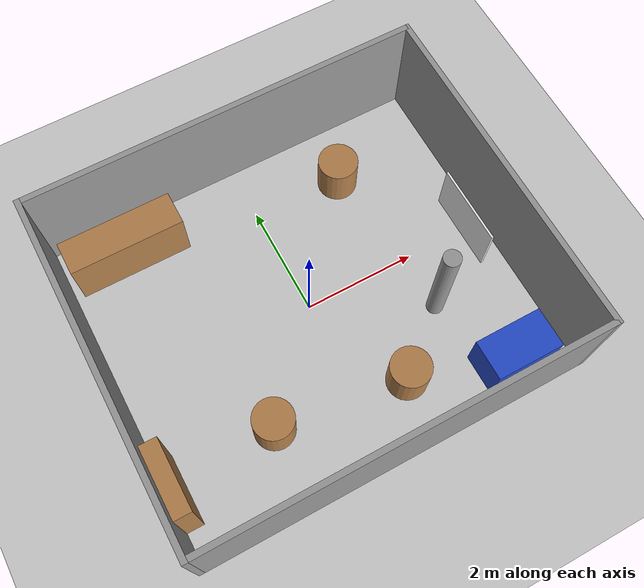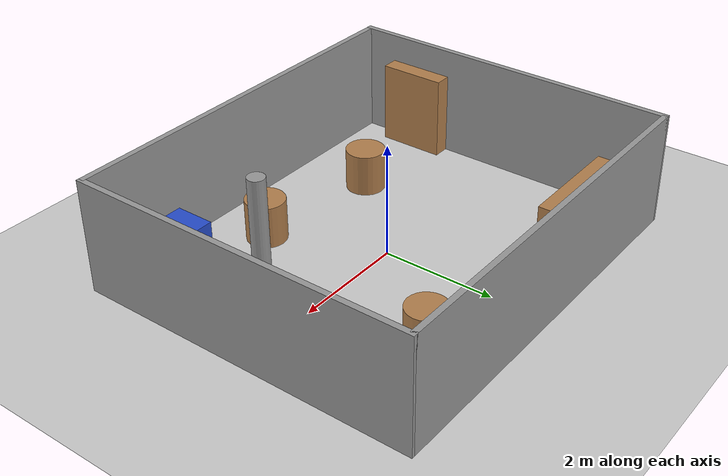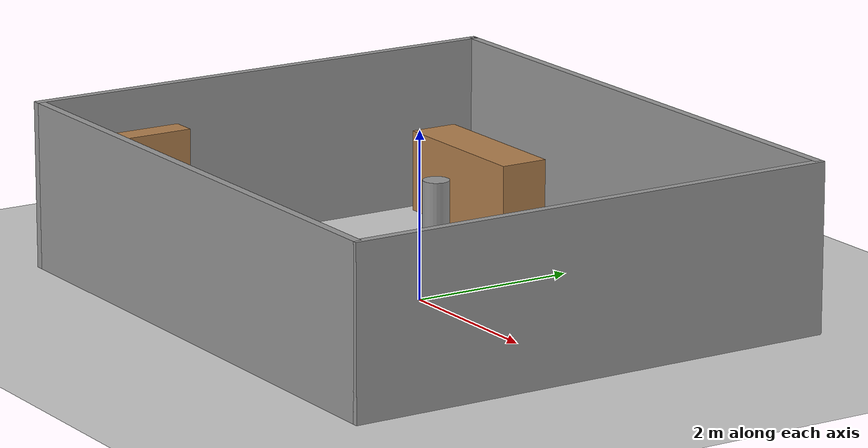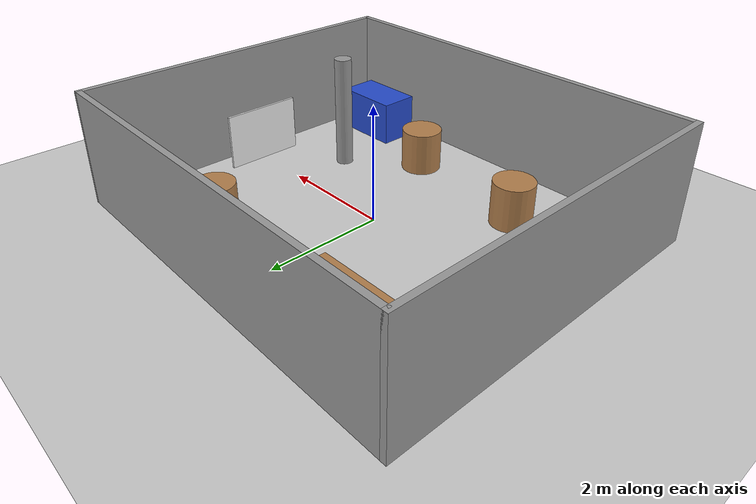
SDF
<sdf version="1.5">
 <world name="default">
  <include><uri>model://sun</uri></include>
  <include><uri>model://ground_plane</uri></include>
  <model name="wall_n">
   <static>true</static>
   <pose>0 3.0 1.0 0 0 0</pose>
   <link name="l">
    <collision name="c"><geometry><box><size>7.0 0.1 2.0</size></box></geometry></collision>
    <visual name="v">
     <geometry><box><size>7.0 0.1 2.0</size></box></geometry>
     <material>
      <script><uri>file://media/materials/scripts/gazebo.material</uri><name>Gazebo/Grey</name></script>
     </material>
    </visual>
   </link>
  </model>
  <model name="wall_s">
   <static>true</static>
   <pose>0 -3.0 1.0 0 0 0</pose>
   <link name="l">
    <collision name="c"><geometry><box><size>7.0 0.1 2.0</size></box></geometry></collision>
    <visual name="v">
     <geometry><box><size>7.0 0.1 2.0</size></box></geometry>
     <material>
      <script><uri>file://media/materials/scripts/gazebo.material</uri><name>Gazebo/Grey</name></script>
     </material>
    </visual>
   </link>
  </model>
  <model name="wall_w">
   <static>true</static>
   <pose>-3.5 0 1.0 0 0 0</pose>
   <link name="l">
    <collision name="c"><geometry><box><size>0.1 6.1 2.0</size></box></geometry></collision>
    <visual name="v">
     <geometry><box><size>0.1 6.1 2.0</size></box></geometry>
     <material>
      <script><uri>file://media/materials/scripts/gazebo.material</uri><name>Gazebo/Grey</name></script>
     </material>
    </visual>
   </link>
  </model>
  <model name="wall_e">
   <static>true</static>
   <pose>3.5 0 1.0 0 0 0</pose>
   <link name="l">
    <collision name="c"><geometry><box><size>0.1 6.1 2.0</size></box></geometry></collision>
    <visual name="v">
     <geometry><box><size>0.1 6.1 2.0</size></box></geometry>
     <material>
      <script><uri>file://media/materials/scripts/gazebo.material</uri><name>Gazebo/Grey</name></script>
     </material>
    </visual>
   </link>
  </model>
  <model name="dock_panel">
   <static>true</static>
   <pose>3.05 0 0.5 0 0 0</pose>
   <link name="l">
    <collision name="c"><geometry><box><size>0.04 1.4 1.0</size></box></geometry></collision>
    <visual name="v">
     <geometry><box><size>0.04 1.4 1.0</size></box></geometry>
     <material>
      <script><uri>file://media/materials/scripts/gazebo.material</uri><name>Gazebo/White</name></script>
     </material>
    </visual>
   </link>
  </model>
  <model name="counter">
   <static>true</static>
   <pose>-2.3 2.3 0.5 0 0 0</pose>
   <link name="l">
    <collision name="c"><geometry><box><size>2.0 0.6 1.0</size></box></geometry></collision>
    <visual name="v">
     <geometry><box><size>2.0 0.6 1.0</size></box></geometry>
     <material>
      <script><uri>file://media/materials/scripts/gazebo.material</uri><name>Gazebo/WoodPallet</name></script>
     </material>
    </visual>
   </link>
  </model>
  <model name="table1">
   <static>true</static>
   <pose>-1.5 -1.6 0.375 0 0 0</pose>
   <link name="l">
    <collision name="c">
     <geometry><cylinder><radius>0.35</radius><length>0.75</length></cylinder></geometry>
    </collision>
    <visual name="v">
     <geometry><cylinder><radius>0.35</radius><length>0.75</length></cylinder></geometry>
     <material>
      <script><uri>file://media/materials/scripts/gazebo.material</uri><name>Gazebo/Wood</name></script>
     </material>
    </visual>
   </link>
  </model>
  <model name="table2">
   <static>true</static>
   <pose>0.8 -1.9 0.375 0 0 0</pose>
   <link name="l">
    <collision name="c">
     <geometry><cylinder><radius>0.35</radius><length>0.75</length></cylinder></geometry>
    </collision>
    <visual name="v">
     <geometry><cylinder><radius>0.35</radius><length>0.75</length></cylinder></geometry>
     <material>
      <script><uri>file://media/materials/scripts/gazebo.material</uri><name>Gazebo/Wood</name></script>
     </material>
    </visual>
   </link>
  </model>
  <model name="table3">
   <static>true</static>
   <pose>1.6 1.9 0.375 0 0 0</pose>
   <link name="l">
    <collision name="c">
     <geometry><cylinder><radius>0.35</radius><length>0.75</length></cylinder></geometry>
    </collision>
    <visual name="v">
     <geometry><cylinder><radius>0.35</radius><length>0.75</length></cylinder></geometry>
     <material>
      <script><uri>file://media/materials/scripts/gazebo.material</uri><name>Gazebo/Wood</name></script>
     </material>
    </visual>
   </link>
  </model>
  <model name="sofa">
   <static>true</static>
   <pose>2.5 -2.4 0.4 0 0 0</pose>
   <link name="l">
    <collision name="c"><geometry><box><size>1.2 0.7 0.8</size></box></geometry></collision>
    <visual name="v">
     <geometry><box><size>1.2 0.7 0.8</size></box></geometry>
     <material>
      <script><uri>file://media/materials/scripts/gazebo.material</uri><name>Gazebo/Blue</name></script>
     </material>
    </visual>
   </link>
  </model>
  <model name="bookshelf">
   <static>true</static>
   <pose>-3.3 -1.8 0.75 0 0 0</pose>
   <link name="l">
    <collision name="c"><geometry><box><size>0.3 1.2 1.5</size></box></geometry></collision>
    <visual name="v">
     <geometry><box><size>0.3 1.2 1.5</size></box></geometry>
     <material>
      <script><uri>file://media/materials/scripts/gazebo.material</uri><name>Gazebo/Wood</name></script>
     </material>
    </visual>
   </link>
  </model>
  <model name="pillar">
   <static>true</static>
   <pose>1.9 -1.0 1.0 0 0 0</pose>
   <link name="l">
    <collision name="c">
     <geometry><cylinder><radius>0.15</radius><length>2.0</length></cylinder></geometry>
    </collision>
    <visual name="v">
     <geometry><cylinder><radius>0.15</radius><length>2.0</length></cylinder></geometry>
     <material>
      <script><uri>file://media/materials/scripts/gazebo.material</uri><name>Gazebo/Grey</name></script>
     </material>
    </visual>
   </link>
  </model>
 </world>
</sdf>
